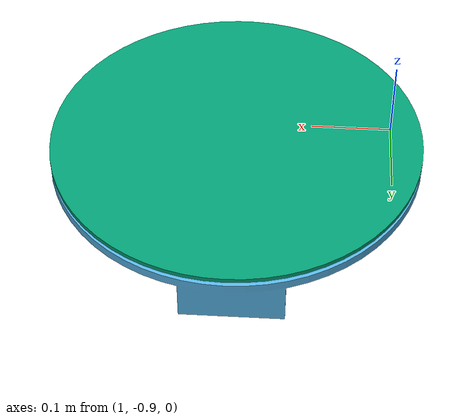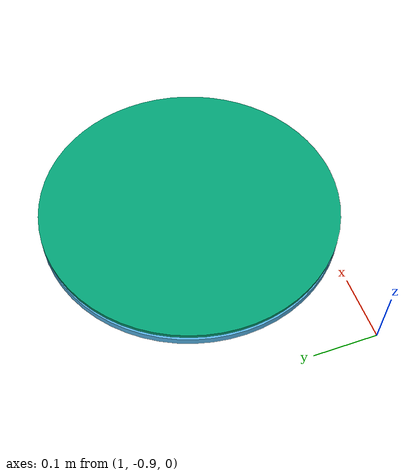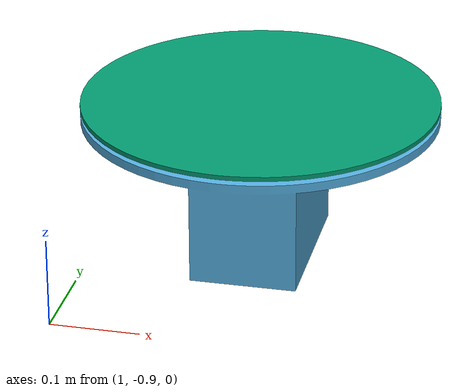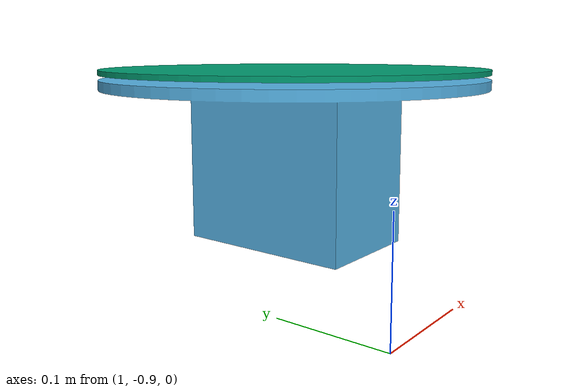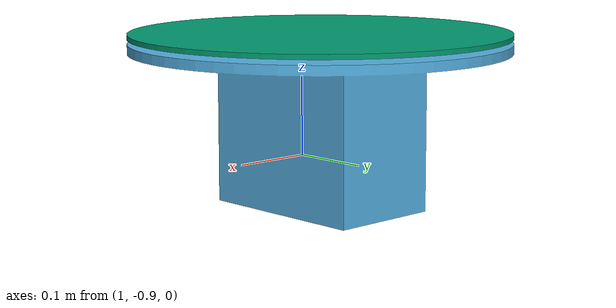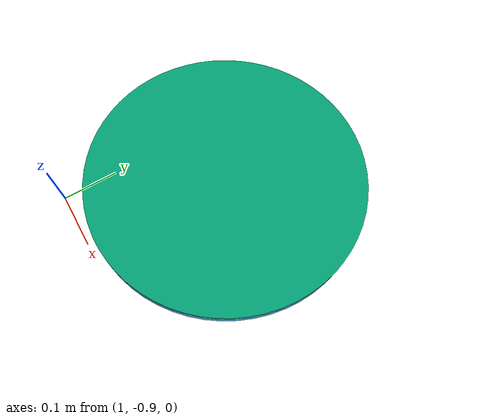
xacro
<?xml version="1.0"?>

<robot xmlns:xacro="http://ros.org/wiki/xacro" name="rotary_table">
  <link name="world"/>

  <link name="rotary_table_base">
    <visual>
      <origin xyz="0.4915 -0.238 0" rpy="1.5708 0 0"/>
      <geometry>
        <mesh filename="package://xarm_moveit_config/meshes/rotary_stand_m.STL" scale="1 1 1"/>
      </geometry>
    </visual>
    <collision>
      <origin xyz="0.4915 -0.238 0" rpy="1.5708 0 0"/>
      <geometry>
        <mesh filename="package://xarm_moveit_config/meshes/rotary_stand_m.STL" scale="1 1 1"/>
      </geometry>
    </collision>
  </link>

  <link name="rotary_plate">
    <visual>
      <origin xyz="0.4915 -0.238 0.18" rpy="1.5708 0 0"/>
      <geometry>
        <mesh filename="package://xarm_moveit_config/meshes/RotaryPlate_m.STL" scale="1 1 1"/>
      </geometry>
    </visual>
    <collision>
      <origin xyz="0.4915 -0.238 0.18" rpy="1.5708 0 0"/>
      <geometry>
        <mesh filename="package://xarm_moveit_config/meshes/RotaryPlate_m.STL" scale="1 1 1"/>
      </geometry>
    </collision>
  </link>

  <joint name="world_to_rotary_stand" type="fixed">
    <parent link="world"/>
    <child link="rotary_table_base"/>
    <origin xyz="0.4915 -0.238 0" rpy="0 0 0"/>
  </joint>

  <joint name="rotary_table_joint" type="revolute">
    <parent link="rotary_table_base"/>
    <child link="rotary_plate"/>
    <origin xyz="0 0 0" rpy="0 0 0"/>
    <axis xyz="0 0 1"/>
    <limit lower="-3.14" upper="3.14" effort="10" velocity="1.0"/>
  </joint>

  <transmission name="rotary_table_transmission">
    <type>transmission_interface/SimpleTransmission</type>
    <joint name="rotary_table_joint">
      <hardwareInterface>hardware_interface/PositionJointInterface</hardwareInterface>
    </joint>
    <actuator name="rotary_table_motor">
      <hardwareInterface>hardware_interface/PositionJointInterface</hardwareInterface>
      <mechanicalReduction>1.0</mechanicalReduction>
    </actuator>
  </transmission>

  <ros2_control name="RotaryTableHW" type="system">
    <hardware>
      <plugin>mock_components/GenericSystem</plugin>
      <param name="example_param_hw_start_duration">0.0</param>
      <param name="example_param_hw_stop_duration">0.0</param>
      <param name="example_param_hw_slowdown">1.0</param>
    </hardware>

    <joint name="rotary_table_joint">
      <state_interface name="position"/>
      <command_interface name="position"/>
    </joint>
  </ros2_control>

</robot>
